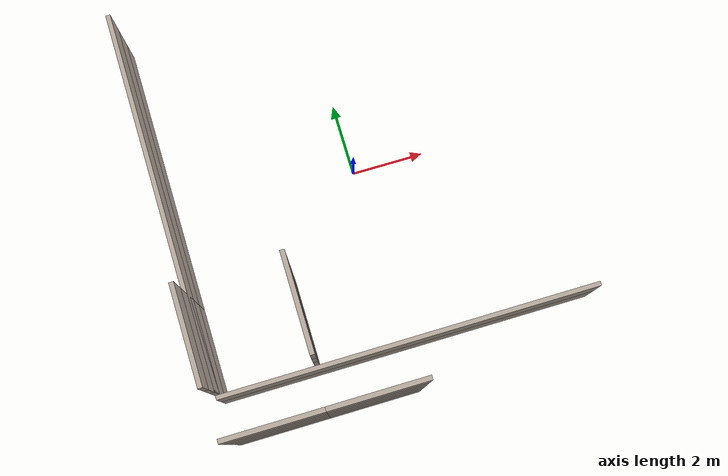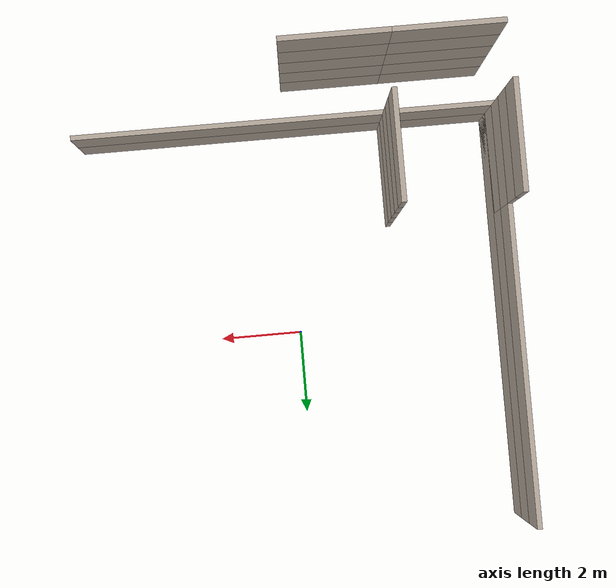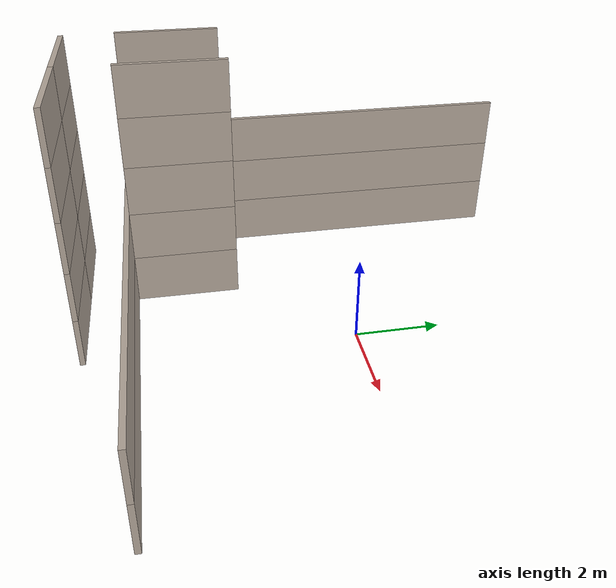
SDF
<sdf version="1.7">
 <model name="HotelBuilding">
  <static>true</static>
  <link name="corridor_rear_wall_f0">
   <pose>0 -5.06 0.6 0 0 0</pose>
   <visual name="visual">
    <geometry><box><size>10.24 0.12 1.2</size></box></geometry>
    <material><ambient>0.6 0.55 0.5 1</ambient><diffuse>0.7 0.65 0.6 1</diffuse></material>
   </visual>
   <collision name="collision"><geometry><box><size>10.24 0.12 1.2</size></box></geometry></collision>
  </link>
  <link name="room_rear_wall_f0_r0">
   <pose>-3.75 -6.25 0.6 0 0 0</pose>
   <visual name="visual">
    <geometry><box><size>2.5 0.12 1.2</size></box></geometry>
    <material><ambient>0.6 0.55 0.5 1</ambient><diffuse>0.7 0.65 0.6 1</diffuse></material>
   </visual>
   <collision name="collision"><geometry><box><size>2.5 0.12 1.2</size></box></geometry></collision>
  </link>
  <link name="room_side_wall_f0_r0_left">
   <pose>-5.0600000000000005 -3.75 0.6 0 0 0</pose>
   <visual name="visual">
    <geometry><box><size>0.12 2.5 1.2</size></box></geometry>
    <material><ambient>0.6 0.55 0.5 1</ambient><diffuse>0.7 0.65 0.6 1</diffuse></material>
   </visual>
   <collision name="collision"><geometry><box><size>0.12 2.5 1.2</size></box></geometry></collision>
  </link>
  <link name="room_divider_f0_r0">
   <pose>-2.44 -3.75 0.6 0 0 0</pose>
   <visual name="visual">
    <geometry><box><size>0.12 2.5 1.2</size></box></geometry>
    <material><ambient>0.6 0.55 0.5 1</ambient><diffuse>0.7 0.65 0.6 1</diffuse></material>
   </visual>
   <collision name="collision"><geometry><box><size>0.12 2.5 1.2</size></box></geometry></collision>
  </link>
  <link name="room_rear_wall_f0_r1">
   <pose>-1.25 -6.25 0.6 0 0 0</pose>
   <visual name="visual">
    <geometry><box><size>2.5 0.12 1.2</size></box></geometry>
    <material><ambient>0.6 0.55 0.5 1</ambient><diffuse>0.7 0.65 0.6 1</diffuse></material>
   </visual>
   <collision name="collision"><geometry><box><size>2.5 0.12 1.2</size></box></geometry></collision>
  </link>
  <link name="room_side_wall_f0_r1_left">
   <pose>-5.0600000000000005 -3.75 0.6 0 0 0</pose>
   <visual name="visual">
    <geometry><box><size>0.12 2.5 1.2</size></box></geometry>
    <material><ambient>0.6 0.55 0.5 1</ambient><diffuse>0.7 0.65 0.6 1</diffuse></material>
   </visual>
   <collision name="collision"><geometry><box><size>0.12 2.5 1.2</size></box></geometry></collision>
  </link>
  <link name="room_side_wall_f0_r2_left">
   <pose>-5.0600000000000005 -3.75 0.6 0 0 0</pose>
   <visual name="visual">
    <geometry><box><size>0.12 2.5 1.2</size></box></geometry>
    <material><ambient>0.6 0.55 0.5 1</ambient><diffuse>0.7 0.65 0.6 1</diffuse></material>
   </visual>
   <collision name="collision"><geometry><box><size>0.12 2.5 1.2</size></box></geometry></collision>
  </link>
  <link name="corridor_left_wall_f0">
   <pose>-5.0600000000000005 0 0.6 0 0 0</pose>
   <visual name="visual">
    <geometry><box><size>0.12 10.0 1.2</size></box></geometry>
    <material><ambient>0.6 0.55 0.5 1</ambient><diffuse>0.7 0.65 0.6 1</diffuse></material>
   </visual>
   <collision name="collision"><geometry><box><size>0.12 10.0 1.2</size></box></geometry></collision>
  </link>
  <link name="corridor_rear_wall_f1">
   <pose>0 -5.06 1.7999999999999998 0 0 0</pose>
   <visual name="visual">
    <geometry><box><size>10.24 0.12 1.2</size></box></geometry>
    <material><ambient>0.6 0.55 0.5 1</ambient><diffuse>0.7 0.65 0.6 1</diffuse></material>
   </visual>
   <collision name="collision"><geometry><box><size>10.24 0.12 1.2</size></box></geometry></collision>
  </link>
  <link name="room_rear_wall_f1_r0">
   <pose>-3.75 -6.25 1.7999999999999998 0 0 0</pose>
   <visual name="visual">
    <geometry><box><size>2.5 0.12 1.2</size></box></geometry>
    <material><ambient>0.6 0.55 0.5 1</ambient><diffuse>0.7 0.65 0.6 1</diffuse></material>
   </visual>
   <collision name="collision"><geometry><box><size>2.5 0.12 1.2</size></box></geometry></collision>
  </link>
  <link name="room_side_wall_f1_r0_left">
   <pose>-5.0600000000000005 -3.75 1.7999999999999998 0 0 0</pose>
   <visual name="visual">
    <geometry><box><size>0.12 2.5 1.2</size></box></geometry>
    <material><ambient>0.6 0.55 0.5 1</ambient><diffuse>0.7 0.65 0.6 1</diffuse></material>
   </visual>
   <collision name="collision"><geometry><box><size>0.12 2.5 1.2</size></box></geometry></collision>
  </link>
  <link name="room_divider_f1_r0">
   <pose>-2.44 -3.75 1.7999999999999998 0 0 0</pose>
   <visual name="visual">
    <geometry><box><size>0.12 2.5 1.2</size></box></geometry>
    <material><ambient>0.6 0.55 0.5 1</ambient><diffuse>0.7 0.65 0.6 1</diffuse></material>
   </visual>
   <collision name="collision"><geometry><box><size>0.12 2.5 1.2</size></box></geometry></collision>
  </link>
  <link name="room_rear_wall_f1_r1">
   <pose>-1.25 -6.25 1.7999999999999998 0 0 0</pose>
   <visual name="visual">
    <geometry><box><size>2.5 0.12 1.2</size></box></geometry>
    <material><ambient>0.6 0.55 0.5 1</ambient><diffuse>0.7 0.65 0.6 1</diffuse></material>
   </visual>
   <collision name="collision"><geometry><box><size>2.5 0.12 1.2</size></box></geometry></collision>
  </link>
  <link name="room_side_wall_f1_r1_left">
   <pose>-5.0600000000000005 -3.75 1.7999999999999998 0 0 0</pose>
   <visual name="visual">
    <geometry><box><size>0.12 2.5 1.2</size></box></geometry>
    <material><ambient>0.6 0.55 0.5 1</ambient><diffuse>0.7 0.65 0.6 1</diffuse></material>
   </visual>
   <collision name="collision"><geometry><box><size>0.12 2.5 1.2</size></box></geometry></collision>
  </link>
  <link name="room_side_wall_f1_r2_left">
   <pose>-5.0600000000000005 -3.75 1.7999999999999998 0 0 0</pose>
   <visual name="visual">
    <geometry><box><size>0.12 2.5 1.2</size></box></geometry>
    <material><ambient>0.6 0.55 0.5 1</ambient><diffuse>0.7 0.65 0.6 1</diffuse></material>
   </visual>
   <collision name="collision"><geometry><box><size>0.12 2.5 1.2</size></box></geometry></collision>
  </link>
  <link name="room_side_wall_f1_r3_left">
   <pose>-5.0600000000000005 -3.75 1.7999999999999998 0 0 0</pose>
   <visual name="visual">
    <geometry><box><size>0.12 2.5 1.2</size></box></geometry>
    <material><ambient>0.6 0.55 0.5 1</ambient><diffuse>0.7 0.65 0.6 1</diffuse></material>
   </visual>
   <collision name="collision"><geometry><box><size>0.12 2.5 1.2</size></box></geometry></collision>
  </link>
  <link name="corridor_left_wall_f1">
   <pose>-5.0600000000000005 0 1.7999999999999998 0 0 0</pose>
   <visual name="visual">
    <geometry><box><size>0.12 10.0 1.2</size></box></geometry>
    <material><ambient>0.6 0.55 0.5 1</ambient><diffuse>0.7 0.65 0.6 1</diffuse></material>
   </visual>
   <collision name="collision"><geometry><box><size>0.12 10.0 1.2</size></box></geometry></collision>
  </link>
  <link name="room_rear_wall_f2_r0">
   <pose>-3.75 -6.25 3.0 0 0 0</pose>
   <visual name="visual">
    <geometry><box><size>2.5 0.12 1.2</size></box></geometry>
    <material><ambient>0.6 0.55 0.5 1</ambient><diffuse>0.7 0.65 0.6 1</diffuse></material>
   </visual>
   <collision name="collision"><geometry><box><size>2.5 0.12 1.2</size></box></geometry></collision>
  </link>
  <link name="room_side_wall_f2_r0_left">
   <pose>-5.0600000000000005 -3.75 3.0 0 0 0</pose>
   <visual name="visual">
    <geometry><box><size>0.12 2.5 1.2</size></box></geometry>
    <material><ambient>0.6 0.55 0.5 1</ambient><diffuse>0.7 0.65 0.6 1</diffuse></material>
   </visual>
   <collision name="collision"><geometry><box><size>0.12 2.5 1.2</size></box></geometry></collision>
  </link>
  <link name="room_divider_f2_r0">
   <pose>-2.44 -3.75 3.0 0 0 0</pose>
   <visual name="visual">
    <geometry><box><size>0.12 2.5 1.2</size></box></geometry>
    <material><ambient>0.6 0.55 0.5 1</ambient><diffuse>0.7 0.65 0.6 1</diffuse></material>
   </visual>
   <collision name="collision"><geometry><box><size>0.12 2.5 1.2</size></box></geometry></collision>
  </link>
  <link name="room_rear_wall_f2_r1">
   <pose>-1.25 -6.25 3.0 0 0 0</pose>
   <visual name="visual">
    <geometry><box><size>2.5 0.12 1.2</size></box></geometry>
    <material><ambient>0.6 0.55 0.5 1</ambient><diffuse>0.7 0.65 0.6 1</diffuse></material>
   </visual>
   <collision name="collision"><geometry><box><size>2.5 0.12 1.2</size></box></geometry></collision>
  </link>
  <link name="room_side_wall_f2_r1_left">
   <pose>-5.0600000000000005 -3.75 3.0 0 0 0</pose>
   <visual name="visual">
    <geometry><box><size>0.12 2.5 1.2</size></box></geometry>
    <material><ambient>0.6 0.55 0.5 1</ambient><diffuse>0.7 0.65 0.6 1</diffuse></material>
   </visual>
   <collision name="collision"><geometry><box><size>0.12 2.5 1.2</size></box></geometry></collision>
  </link>
  <link name="room_side_wall_f2_r2_left">
   <pose>-5.0600000000000005 -3.75 3.0 0 0 0</pose>
   <visual name="visual">
    <geometry><box><size>0.12 2.5 1.2</size></box></geometry>
    <material><ambient>0.6 0.55 0.5 1</ambient><diffuse>0.7 0.65 0.6 1</diffuse></material>
   </visual>
   <collision name="collision"><geometry><box><size>0.12 2.5 1.2</size></box></geometry></collision>
  </link>
  <link name="corridor_left_wall_f2">
   <pose>-5.0600000000000005 0 3.0 0 0 0</pose>
   <visual name="visual">
    <geometry><box><size>0.12 10.0 1.2</size></box></geometry>
    <material><ambient>0.6 0.55 0.5 1</ambient><diffuse>0.7 0.65 0.6 1</diffuse></material>
   </visual>
   <collision name="collision"><geometry><box><size>0.12 10.0 1.2</size></box></geometry></collision>
  </link>
  <link name="room_rear_wall_f3_r0">
   <pose>-3.75 -6.25 4.199999999999999 0 0 0</pose>
   <visual name="visual">
    <geometry><box><size>2.5 0.12 1.2</size></box></geometry>
    <material><ambient>0.6 0.55 0.5 1</ambient><diffuse>0.7 0.65 0.6 1</diffuse></material>
   </visual>
   <collision name="collision"><geometry><box><size>2.5 0.12 1.2</size></box></geometry></collision>
  </link>
  <link name="room_side_wall_f3_r0_left">
   <pose>-5.0600000000000005 -3.75 4.199999999999999 0 0 0</pose>
   <visual name="visual">
    <geometry><box><size>0.12 2.5 1.2</size></box></geometry>
    <material><ambient>0.6 0.55 0.5 1</ambient><diffuse>0.7 0.65 0.6 1</diffuse></material>
   </visual>
   <collision name="collision"><geometry><box><size>0.12 2.5 1.2</size></box></geometry></collision>
  </link>
  <link name="room_divider_f3_r0">
   <pose>-2.44 -3.75 4.199999999999999 0 0 0</pose>
   <visual name="visual">
    <geometry><box><size>0.12 2.5 1.2</size></box></geometry>
    <material><ambient>0.6 0.55 0.5 1</ambient><diffuse>0.7 0.65 0.6 1</diffuse></material>
   </visual>
   <collision name="collision"><geometry><box><size>0.12 2.5 1.2</size></box></geometry></collision>
  </link>
  <link name="room_rear_wall_f3_r1">
   <pose>-1.25 -6.25 4.199999999999999 0 0 0</pose>
   <visual name="visual">
    <geometry><box><size>2.5 0.12 1.2</size></box></geometry>
    <material><ambient>0.6 0.55 0.5 1</ambient><diffuse>0.7 0.65 0.6 1</diffuse></material>
   </visual>
   <collision name="collision"><geometry><box><size>2.5 0.12 1.2</size></box></geometry></collision>
  </link>
  <link name="room_side_wall_f3_r1_left">
   <pose>-5.0600000000000005 -3.75 4.199999999999999 0 0 0</pose>
   <visual name="visual">
    <geometry><box><size>0.12 2.5 1.2</size></box></geometry>
    <material><ambient>0.6 0.55 0.5 1</ambient><diffuse>0.7 0.65 0.6 1</diffuse></material>
   </visual>
   <collision name="collision"><geometry><box><size>0.12 2.5 1.2</size></box></geometry></collision>
  </link>
  <link name="room_side_wall_f3_r2_left">
   <pose>-5.0600000000000005 -3.75 4.199999999999999 0 0 0</pose>
   <visual name="visual">
    <geometry><box><size>0.12 2.5 1.2</size></box></geometry>
    <material><ambient>0.6 0.55 0.5 1</ambient><diffuse>0.7 0.65 0.6 1</diffuse></material>
   </visual>
   <collision name="collision"><geometry><box><size>0.12 2.5 1.2</size></box></geometry></collision>
  </link>
  <link name="room_side_wall_f3_r3_left">
   <pose>-5.0600000000000005 -3.75 4.199999999999999 0 0 0</pose>
   <visual name="visual">
    <geometry><box><size>0.12 2.5 1.2</size></box></geometry>
    <material><ambient>0.6 0.55 0.5 1</ambient><diffuse>0.7 0.65 0.6 1</diffuse></material>
   </visual>
   <collision name="collision"><geometry><box><size>0.12 2.5 1.2</size></box></geometry></collision>
  </link>
  <link name="room_rear_wall_f4_r0">
   <pose>-3.75 -6.25 5.3999999999999995 0 0 0</pose>
   <visual name="visual">
    <geometry><box><size>2.5 0.12 1.2</size></box></geometry>
    <material><ambient>0.6 0.55 0.5 1</ambient><diffuse>0.7 0.65 0.6 1</diffuse></material>
   </visual>
   <collision name="collision"><geometry><box><size>2.5 0.12 1.2</size></box></geometry></collision>
  </link>
  <link name="room_side_wall_f4_r0_left">
   <pose>-5.0600000000000005 -3.75 5.3999999999999995 0 0 0</pose>
   <visual name="visual">
    <geometry><box><size>0.12 2.5 1.2</size></box></geometry>
    <material><ambient>0.6 0.55 0.5 1</ambient><diffuse>0.7 0.65 0.6 1</diffuse></material>
   </visual>
   <collision name="collision"><geometry><box><size>0.12 2.5 1.2</size></box></geometry></collision>
  </link>
  <link name="room_divider_f4_r0">
   <pose>-2.44 -3.75 5.3999999999999995 0 0 0</pose>
   <visual name="visual">
    <geometry><box><size>0.12 2.5 1.2</size></box></geometry>
    <material><ambient>0.6 0.55 0.5 1</ambient><diffuse>0.7 0.65 0.6 1</diffuse></material>
   </visual>
   <collision name="collision"><geometry><box><size>0.12 2.5 1.2</size></box></geometry></collision>
  </link>
  <link name="room_rear_wall_f4_r1">
   <pose>-1.25 -6.25 5.3999999999999995 0 0 0</pose>
   <visual name="visual">
    <geometry><box><size>2.5 0.12 1.2</size></box></geometry>
    <material><ambient>0.6 0.55 0.5 1</ambient><diffuse>0.7 0.65 0.6 1</diffuse></material>
   </visual>
   <collision name="collision"><geometry><box><size>2.5 0.12 1.2</size></box></geometry></collision>
  </link>
  <link name="room_side_wall_f4_r1_left">
   <pose>-5.0600000000000005 -3.75 5.3999999999999995 0 0 0</pose>
   <visual name="visual">
    <geometry><box><size>0.12 2.5 1.2</size></box></geometry>
    <material><ambient>0.6 0.55 0.5 1</ambient><diffuse>0.7 0.65 0.6 1</diffuse></material>
   </visual>
   <collision name="collision"><geometry><box><size>0.12 2.5 1.2</size></box></geometry></collision>
  </link>
  <link name="room_side_wall_f4_r2_left">
   <pose>-5.0600000000000005 -3.75 5.3999999999999995 0 0 0</pose>
   <visual name="visual">
    <geometry><box><size>0.12 2.5 1.2</size></box></geometry>
    <material><ambient>0.6 0.55 0.5 1</ambient><diffuse>0.7 0.65 0.6 1</diffuse></material>
   </visual>
   <collision name="collision"><geometry><box><size>0.12 2.5 1.2</size></box></geometry></collision>
  </link>
  <link name="room_side_wall_f4_r3_left">
   <pose>-5.0600000000000005 -3.75 5.3999999999999995 0 0 0</pose>
   <visual name="visual">
    <geometry><box><size>0.12 2.5 1.2</size></box></geometry>
    <material><ambient>0.6 0.55 0.5 1</ambient><diffuse>0.7 0.65 0.6 1</diffuse></material>
   </visual>
   <collision name="collision"><geometry><box><size>0.12 2.5 1.2</size></box></geometry></collision>
  </link>
 </model>
</sdf>
